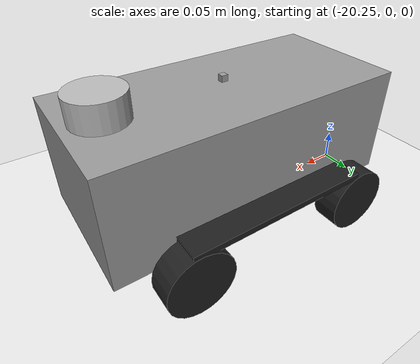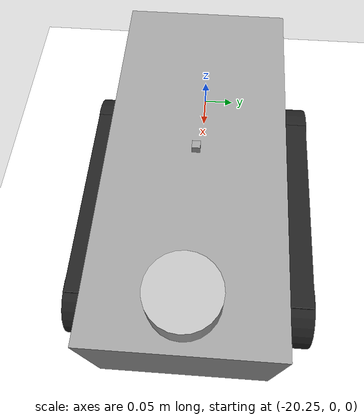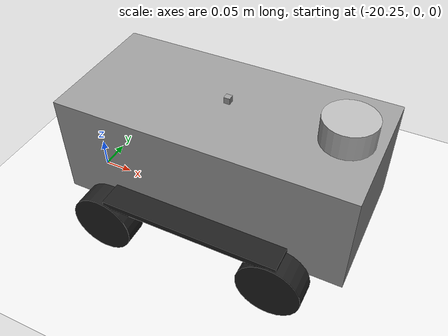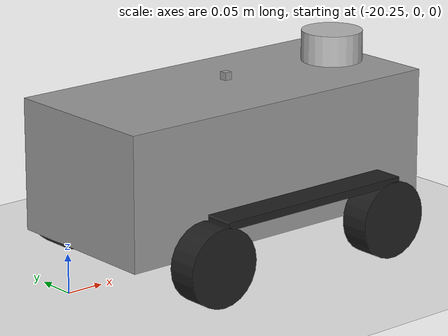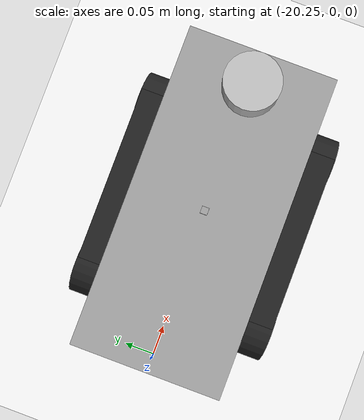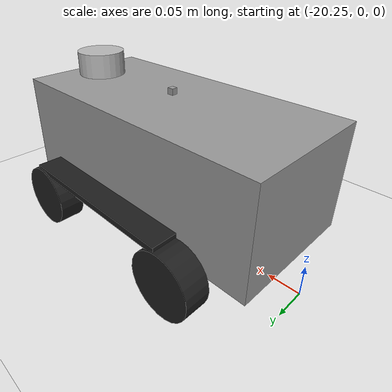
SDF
<sdf version="1.7">
 <world name="default">
  <light name="sun" type="directional">
   <pose>0 0 10 0 -0 0</pose>
   <diffuse>0.8 0.8 0.8 1</diffuse>
   <specular>0.2 0.2 0.2 1</specular>
   <attenuation>
    <range>1000</range>
    <constant>0.9</constant>
    <linear>0.01</linear>
    <quadratic>0.001</quadratic>
   </attenuation>
   <direction>-0.5 0.1 -0.9</direction>
   <spot><inner_angle>0</inner_angle><outer_angle>0</outer_angle><falloff>0</falloff></spot>
  </light>
  <model name="ground_plane">
   <static>1</static>
   <link name="link">
    <collision name="collision">
     <geometry><plane><normal>0 0 1</normal><size>100 100</size></plane></geometry>
     <surface>
      <contact><collide_bitmask>65535</collide_bitmask></contact>
      <friction><ode><mu>100</mu><mu2>50</mu2></ode></friction>
     </surface>
    </collision>
    <visual name="visual">
     <cast_shadows>0</cast_shadows>
     <geometry><plane><normal>0 0 1</normal><size>100 100</size></plane></geometry>
     <material>
      <script><uri>file://media/materials/scripts/gazebo.material</uri><name>Gazebo/White</name></script>
     </material>
    </visual>
   </link>
  </model>
  <model name="tankbot0">
   <pose>-20 0 0 0 0 0</pose>
   <include><uri>model://tankbot</uri></include>
   <plugin name="tankbot_control" filename="libtank_control_plugin.so"/>
  </model>
  <gravity>0 0 -9.8</gravity>
  <magnetic_field>6e-06 2.3e-05 -4.2e-05</magnetic_field>
  <atmosphere type="adiabatic"/>
  <physics type="ode">
   <max_step_size>0.001</max_step_size>
   <real_time_factor>1</real_time_factor>
   <real_time_update_rate>1000</real_time_update_rate>
  </physics>
  <scene><ambient>0.4 0.4 0.4 1</ambient><background>0.7 0.7 0.7 1</background><shadows>1</shadows></scene>
  <spherical_coordinates>
   <surface_model>EARTH_WGS84</surface_model>
   <latitude_deg>0</latitude_deg>
   <longitude_deg>0</longitude_deg>
   <elevation>0</elevation>
   <heading_deg>0</heading_deg>
  </spherical_coordinates>
 </world>
</sdf>

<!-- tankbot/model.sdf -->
<sdf version="1.5">
  <!-- http://sdformat.org/spec?elem=sensor&ver=1.5 -->
  <model name="tankbot">
    <link name="chassis">
      <pose>0 0 0.135  0 0 0</pose>
      <inertial>
        <pose>0.04650000000000001 0 0  0 0 0</pose>
        <mass>2.0</mass>
        <inertia>
          <ixx>0.012592666666666665</ixx>
          <iyy>0.04085416666666667</iyy>
          <izz>0.043813500000000005</izz>
          <ixy>0</ixy>
          <ixz>0</ixz>
          <iyz>0</iyz>
        </inertia>
      </inertial>
      <collision name="collision">
        <geometry>
          <box>
            <size>0.465 0.216 0.17</size>
          </box>
        </geometry>
      </collision>
      <visual name="visual">
        <geometry>
          <box>
            <size>0.465 0.216 0.17</size>
          </box>
        </geometry>
        <material>
          <script>
            <uri>file://media/materials/scripts/gazebo.material</uri>
            <name>Gazebo/Grey</name>
          </script>
        </material>
      </visual>
    </link>

    <link name="wheel_fl">
      <pose>
        0.1395 0.14200000000000002 0.05
        -1.5707963267948966 -0.08726646259971647 0
      </pose>
      <inertial>
        <mass>0.25</mass>
        <inertia>
          <ixx>0.00018958333333333338</ixx>
          <iyy>0.00018958333333333338</iyy>
          <izz>0.00031250000000000006</izz>
          <ixy>0</ixy>
          <ixz>0</ixz>
          <iyz>0</iyz>
        </inertia>
      </inertial>
      <collision name="collision">
        <geometry>
          <cylinder>
            <radius>0.05</radius>
            <length>0.04</length>
          </cylinder>
        </geometry>
      </collision>
      <visual name="wheel_fl">
        <geometry>
          <cylinder>
            <radius>0.05</radius>
            <length>0.04</length>
          </cylinder>
        </geometry>
        <material>
          <script>
            <uri>file://media/materials/scripts/gazebo.material</uri>
            <name>Gazebo/Black</name>
          </script>
        </material>
      </visual>
    </link>

    <joint name="wheel_fl_drive" type="revolute">
      <parent>chassis</parent>
      <child>wheel_fl</child>
      <axis>
        <xyz>0 0 1</xyz>
      </axis>
    </joint>

    <link name="chain_l_up">
      <pose>
        0.0098 0.14 0.1
        0.0 0.0 0.0
      </pose>
      <gravity>0</gravity>
      <collision name="collision">
        <geometry>
          <box>
            <size>0.28 0.04 0.01</size>
          </box>
        </geometry>
      </collision>
      <visual name="visual">
        <geometry>
          <box>
            <size>0.28 0.04 0.01</size>
          </box>
        </geometry>
        <material>
          <script>
            <uri>file://media/materials/scripts/gazebo.material</uri>
            <name>Gazebo/Black</name>
          </script>
        </material>
      </visual>
    </link>

    <link name="chain_r_up">
      <pose>
        0.0098 -0.14 0.1
        0.0 0.0 0.0
      </pose>
      <gravity>0</gravity>
      <collision name="collision">
        <geometry>
          <box>
            <size>0.28 0.04 0.01</size>
          </box>
        </geometry>
      </collision>
      <visual name="visual">
        <geometry>
          <box>
            <size>0.28 0.04 0.01</size>
          </box>
        </geometry>
        <material>
          <script>
            <uri>file://media/materials/scripts/gazebo.material</uri>
            <name>Gazebo/Black</name>
          </script>
        </material>
      </visual>
    </link>

    <joint name="chain_up_joint" type="revolute">
      <parent>chassis</parent>
      <child>chain_r_up</child>
    </joint>

    <joint name="chain_up_2_joint" type="revolute">
      <parent>chassis</parent>
      <child>chain_l_up</child>
    </joint>

    <link name="wheel_fr">
      <pose>
        0.1395 -0.14200000000000002 0.05
        -1.5707963267948966 -0.08726646259971647 0
      </pose>
      <inertial>
        <mass>0.25</mass>
        <inertia>
          <ixx>0.00018958333333333338</ixx>
          <iyy>0.00018958333333333338</iyy>
          <izz>0.00031250000000000006</izz>
          <ixy>0</ixy>
          <ixz>0</ixz>
          <iyz>0</iyz>
        </inertia>
      </inertial>
      <collision name="collision">
        <geometry>
          <cylinder>
            <radius>0.05</radius>
            <length>0.04</length>
          </cylinder>
        </geometry>
      </collision>
      <visual name="visual">
        <geometry>
          <cylinder>
            <radius>0.05</radius>
            <length>0.04</length>
          </cylinder>
        </geometry>
        <material>
          <script>
            <uri>file://media/materials/scripts/gazebo.material</uri>
            <name>Gazebo/Black</name>
          </script>
        </material>
      </visual>
    </link>

    <joint name="wheel_fr_drive" type="revolute">
      <parent>chassis</parent>
      <child>wheel_fr</child>
      <axis>
        <xyz>0 0 1</xyz>
      </axis>
    </joint>

    <link name="wheel_rl">
      <pose>
       -0.1395 0.14200000000000002 0.05
       -1.5707963267948966 0 0
      </pose>
      <inertial>
        <mass>0.25</mass>
        <inertia>
          <ixx>0.00018958333333333338</ixx>
          <iyy>0.00018958333333333338</iyy>
          <izz>0.00031250000000000006</izz>
          <ixy>0</ixy>
          <ixz>0</ixz>
          <iyz>0</iyz>
        </inertia>
      </inertial>
      <collision name="collision">
        <geometry>
          <cylinder>
            <radius>0.05</radius>
            <length>0.04</length>
          </cylinder>
        </geometry>
      </collision>
      <visual name="visual">
        <geometry>
          <cylinder>
            <radius>0.05</radius>
            <length>0.04</length>
          </cylinder>
        </geometry>
        <material>
          <script>
            <uri>file://media/materials/scripts/gazebo.material</uri>
            <name>Gazebo/Black</name>
          </script>
        </material>
      </visual>
    </link>
    <joint name="wheel_rl_drive" type="revolute">
      <parent>chassis</parent>
      <child>wheel_rl</child>
      <axis>
        <xyz>0 0 1</xyz>
      </axis>
    </joint>

    <link name="wheel_rr">
      <pose>
       -0.1395 -0.14200000000000002 0.05
       -1.5707963267948966 0 0
      </pose>
      <inertial>
        <mass>0.25</mass>
        <inertia>
          <ixx>0.00018958333333333338</ixx>
          <iyy>0.00018958333333333338</iyy>
          <izz>0.00031250000000000006</izz>
          <ixy>0</ixy>
          <ixz>0</ixz>
          <iyz>0</iyz>
        </inertia>
      </inertial>
      <collision name="collision">
        <geometry>
          <cylinder>
            <radius>0.05</radius>
            <length>0.04</length>
          </cylinder>
        </geometry>
      </collision>
      <visual name="visual">
        <geometry>
          <cylinder>
            <radius>0.05</radius>
            <length>0.04</length>
          </cylinder>
        </geometry>
        <material>
          <script>
            <uri>file://media/materials/scripts/gazebo.material</uri>
            <name>Gazebo/Black</name>
          </script>
        </material>
      </visual>
    </link>
    <joint name="wheel_rr_drive" type="revolute">
      <parent>chassis</parent>
      <child>wheel_rr</child>
      <axis>
        <xyz>0 0 1</xyz>
      </axis>
    </joint>

     <include>
      <uri>model://ultrasonic_sensor</uri>
      <pose>
        0.18 0.0 0.24
        0.0 0.0 0.0
      </pose>
    </include>

    <joint name="sonar_joint" type="fixed">
      <child>ultrasonic_sensor::link</child>
      <parent>chassis</parent>
    </joint>

    <include>
      <uri>model://camera_sensor</uri>
      <pose>
        0.2 0.0 0.04
        0.0 1.57 0.0
      </pose>
    </include>

    <joint name="camera_joint" type="fixed">
      <child>camera_sensor::link</child>
      <parent>chassis</parent>
    </joint>

    <include>
      <uri>model://microphone_sensor</uri>
      <pose>
        0.0 0.0 0.23
        0.0 0.0 0.0
      </pose>
    </include>

  <plugin name="tankbot_control" filename='libtank_control_plugin.so'/>
  </model>
</sdf>

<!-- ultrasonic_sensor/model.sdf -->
<sdf version="1.6">
  <model name="ultrasonic_sensor">
    <pose>0 0 0.02 0 0 0</pose>
    <link name="link">

      <inertial>
        <mass>0.1</mass>
      </inertial>

      <visual name="visual">
        <geometry>
          <cylinder>
            <radius>0.04</radius>
            <length>0.04</length>
          </cylinder>
        </geometry>
      </visual>

      <collision name="collision-base">
        <pose>0 0 -0.0145 0 0 0</pose>
        <geometry>
          <box>
            <size>0.05 0.05 0.041</size>
          </box>
        </geometry>
      </collision>

      <collision name="collision-top">
        <pose>0 0 0.0205 0 0 0</pose>
        <geometry>
          <cylinder>
            <radius>0.021</radius>
            <length>0.029</length>
          </cylinder>
        </geometry>
      </collision>

      <sensor name="sonar" type="sonar">
        <pose>0.04 0 0 0 1.5 3.14</pose>
        <sonar>
          <min>0</min>
          <max>3</max>
          <radius>0.3</radius>
        </sonar>
        <plugin name="sonar" filename="libSonarPlugin.so" />
        <always_on>1</always_on>
        <update_rate>30</update_rate>
        <visualize>true</visualize>
      </sensor>

    </link>
  </model>
</sdf>

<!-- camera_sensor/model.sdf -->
<sdf version="1.6">
  <model name="camera_sensor">
    <pose>0 0 0.02 0 0 0</pose>
    <link name="link">
      <inertial>
        <mass>0.1</mass>
      </inertial>

      <visual name="visual">
        <geometry>
          <box>
            <size>0.01 0.07 0.04</size>
          </box>
        </geometry>
        <material>
          <script>
            <uri>file://media/materials/scripts/gazebo.material</uri>
            <name>Gazebo/Red</name>
          </script>
        </material>
      </visual>

      <collision name="collision">
        <pose>0 0 -0.0145 0 0 0</pose>
        <geometry>
          <box>
            <size>0.01 0.07 0.04</size>
          </box>
        </geometry>
      </collision>

      <sensor name='camera' type='camera'>
        <camera>
          <horizontal_fov>1.3962634</horizontal_fov>
          <image>
            <width>2</width>
            <height>2</height>
          </image>
          <clip>
            <near>0.02</near>
            <far>300</far>
          </clip>
        </camera>
        <always_on>1</always_on>
        <update_rate>10</update_rate>
        <visualize>1</visualize>

        <plugin name="camera_controller" filename="libCameraPlugin.so"></plugin>
      </sensor>

    </link>
  </model>
</sdf>

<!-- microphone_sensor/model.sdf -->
<sdf version="1.5">
  <model name="microphone_sensor">
    <pose>0 0 0 0 0 0</pose>
    <link name="link">
      <inertial>
        <mass>0.1</mass>
      </inertial>

      <visual name="visual">
        <geometry>
          <box>
            <size>0.01 0.01 0.01</size>
          </box>
        </geometry>
        <material>
          <script>
            <uri>file://media/materials/scripts/gazebo.material</uri>
            <name>Gazebo/Grey</name>
          </script>
        </material>
      </visual>

      <collision name="collision">
        <pose>0 0 0.0 0 0 0</pose>
        <geometry>
          <box>
            <size>0.01 0.01 0.01</size>
          </box>
        </geometry>
      </collision>
    </link>
    <plugin name="microphone_controller" filename="libmicrophone_control_plugin.so"></plugin>
  </model>
</sdf>
